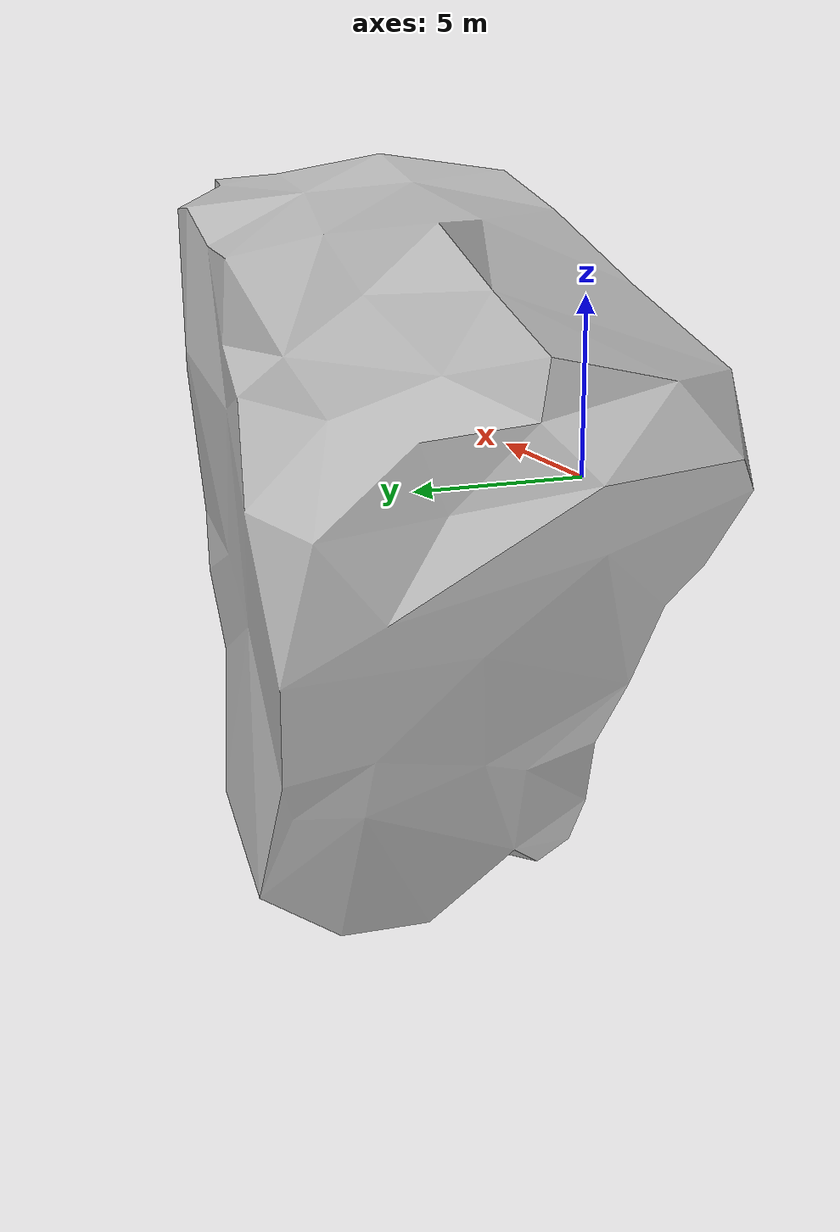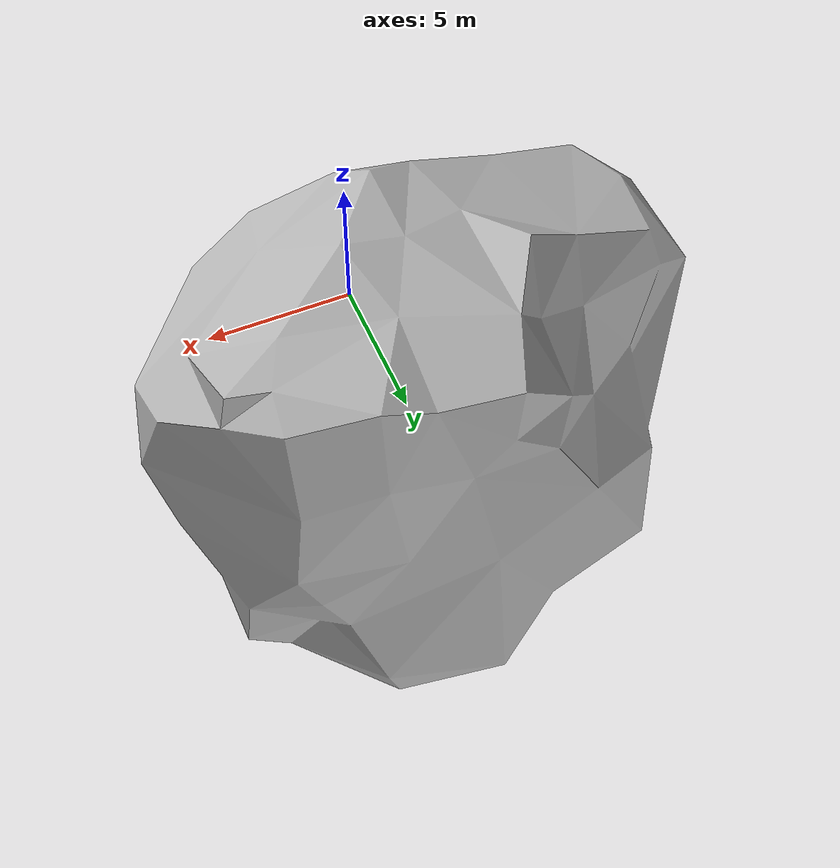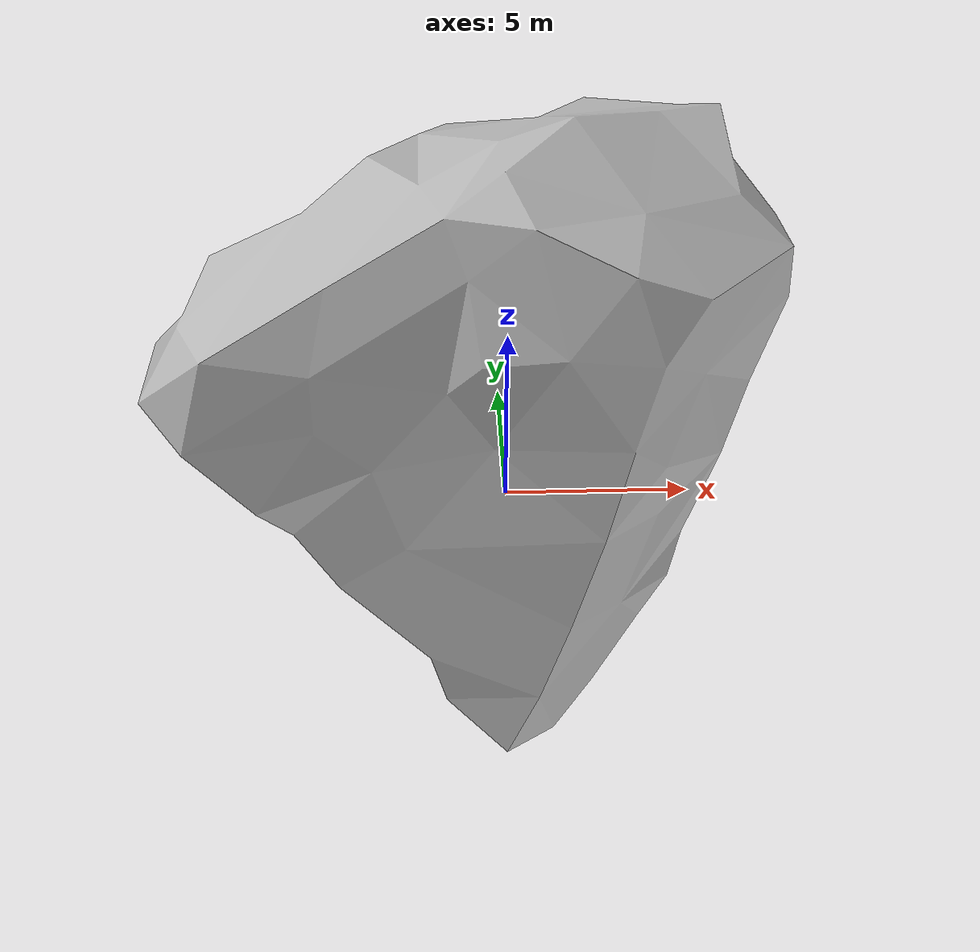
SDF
<?xml version="1.0" ?>
<sdf version="1.6">
  <model name="rock">
    <pose>0 0 0.4 0 0 0</pose>
    <static>true</static>
    <link name="link">
      <visual name="visual">
        <geometry>
          <mesh>
            <uri>model://rock/materials/meshes/rock_3.dae</uri>
          </mesh>
        </geometry>
        <material>
          <script>
            <uri>model://rock/materials/scripts</uri>
            <uri>model://rock/materials/textures</uri>
            <name>rock/rock</name>
          </script>
        </material>
      </visual>

      <collision name='collision'>
        <laser_retro>0</laser_retro>
        <max_contacts>10</max_contacts>
        <pose frame=''>0 0 0 0 -0 0</pose>
        <geometry>
          <mesh>
            <uri>model://rock/materials/meshes/rock_3.dae</uri>
          </mesh>
        </geometry>
        <surface>
          <friction>
            <ode>
              <mu>1</mu>
              <mu2>1</mu2>
              <fdir1>0 0 0</fdir1>
              <slip1>0</slip1>
              <slip2>0</slip2>
            </ode>
            <torsional>
              <coefficient>1</coefficient>
              <patch_radius>0</patch_radius>
              <surface_radius>0</surface_radius>
              <use_patch_radius>1</use_patch_radius>
              <ode>
                <slip>0</slip>
              </ode>
            </torsional>
          </friction>
          <bounce>
            <restitution_coefficient>0</restitution_coefficient>
            <threshold>1e+06</threshold>
          </bounce>
          <contact>
            <collide_without_contact>0</collide_without_contact>
            <collide_without_contact_bitmask>1</collide_without_contact_bitmask>
            <collide_bitmask>1</collide_bitmask>
            <ode>
              <soft_cfm>0</soft_cfm>
              <soft_erp>0.2</soft_erp>
              <kp>1e+13</kp>
              <kd>1</kd>
              <max_vel>0.01</max_vel>
              <min_depth>0</min_depth>
            </ode>
            <bullet>
              <split_impulse>1</split_impulse>
              <split_impulse_penetration_threshold>-0.01</split_impulse_penetration_threshold>
              <soft_cfm>0</soft_cfm>
              <soft_erp>0.2</soft_erp>
              <kp>1e+13</kp>
              <kd>1</kd>
            </bullet>
          </contact>
        </surface>
      </collision>
    </link>
  </model>
</sdf>
